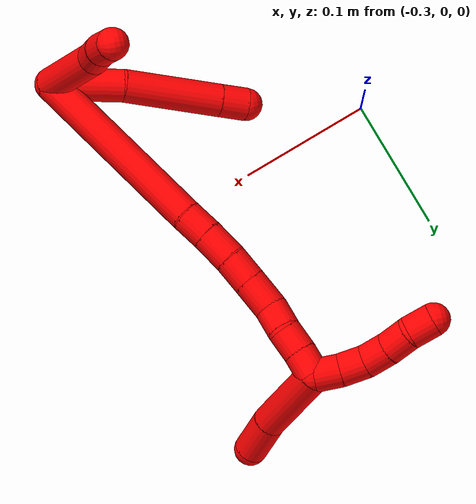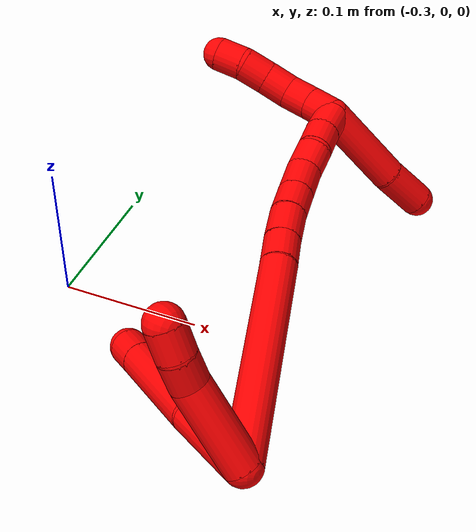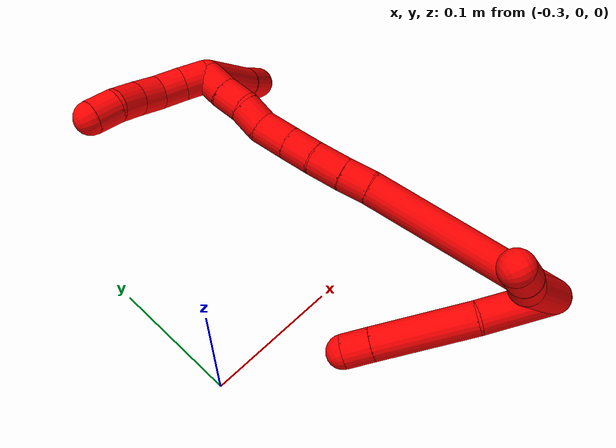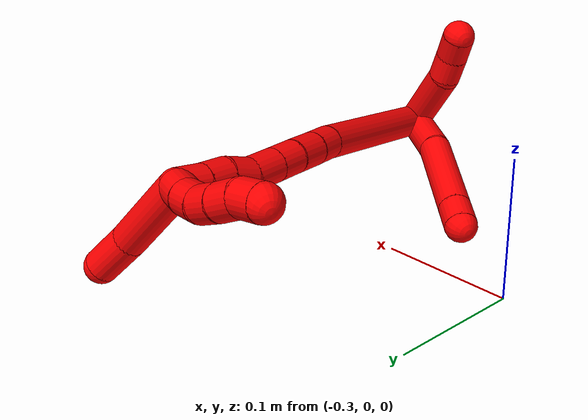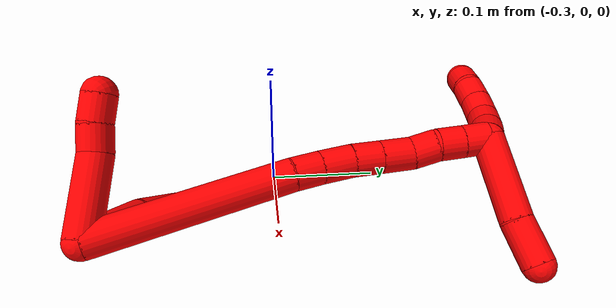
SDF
<sdf version="1.7">
 <world name="default">
  <model name="2">
   <static>0</static>
   <link name="2">
    <collision name="collision-cylinder-e_1_2_8">
     <pose>-0.002135 0.005293 0.026632 -0.196197 -0.078461 0.007726</pose>
     <geometry><cylinder><radius>0.0125</radius><length>0.054473</length></cylinder></geometry>
     <surface>
      <friction><ode><mu>1.16</mu><mu2>1.16</mu2><slip1>0</slip1><slip2>0</slip2></ode></friction>
      <contact><ode><kp>1e+06</kp><kd>1</kd><max_vel>0</max_vel><min_depth>0.001</min_depth></ode></contact>
     </surface>
    </collision>
    <visual name="visual-cylinder-e_1_2_8">
     <pose>-0.002135 0.005293 0.026632 -0.196197 -0.078461 0.007726</pose>
     <geometry><cylinder><radius>0.0125</radius><length>0.054473</length></cylinder></geometry>
     <material><ambient>1 0 0 1</ambient></material>
    </visual>
    <collision name="collision-cylinder-e_2_8_9">
     <pose>-0.013986 0.017986 0.088573 -0.206584 -0.263072 0.027427</pose>
     <geometry><cylinder><radius>0.0125</radius><length>0.074724</length></cylinder></geometry>
     <surface>
      <friction><ode><mu>1.16</mu><mu2>1.16</mu2><slip1>0</slip1><slip2>0</slip2></ode></friction>
      <contact><ode><kp>1e+06</kp><kd>1</kd><max_vel>0</max_vel><min_depth>0.001</min_depth></ode></contact>
     </surface>
    </collision>
    <visual name="visual-cylinder-e_2_8_9">
     <pose>-0.013986 0.017986 0.088573 -0.206584 -0.263072 0.027427</pose>
     <geometry><cylinder><radius>0.0125</radius><length>0.074724</length></cylinder></geometry>
     <material><ambient>1 0 0 1</ambient></material>
    </visual>
    <collision name="collision-cylinder-e_3_9_6">
     <pose>-0.026486 0.027321 0.133716 -0.194289 -0.271003 0.026571</pose>
     <geometry><cylinder><radius>0.0125</radius><length>0.020803</length></cylinder></geometry>
     <surface>
      <friction><ode><mu>1.16</mu><mu2>1.16</mu2><slip1>0</slip1><slip2>0</slip2></ode></friction>
      <contact><ode><kp>1e+06</kp><kd>1</kd><max_vel>0</max_vel><min_depth>0.001</min_depth></ode></contact>
     </surface>
    </collision>
    <visual name="visual-cylinder-e_3_9_6">
     <pose>-0.026486 0.027321 0.133716 -0.194289 -0.271003 0.026571</pose>
     <geometry><cylinder><radius>0.0125</radius><length>0.020803</length></cylinder></geometry>
     <material><ambient>1 0 0 1</ambient></material>
    </visual>
    <collision name="collision-cylinder-e_1_2_10">
     <pose>0.023693 0.011279 0.013996 -0.678317 0.921791 -0.346847</pose>
     <geometry><cylinder><radius>0.0125</radius><length>0.05948</length></cylinder></geometry>
     <surface>
      <friction><ode><mu>1.16</mu><mu2>1.16</mu2><slip1>0</slip1><slip2>0</slip2></ode></friction>
      <contact><ode><kp>1e+06</kp><kd>1</kd><max_vel>0</max_vel><min_depth>0.001</min_depth></ode></contact>
     </surface>
    </collision>
    <visual name="visual-cylinder-e_1_2_10">
     <pose>0.023693 0.011279 0.013996 -0.678317 0.921791 -0.346847</pose>
     <geometry><cylinder><radius>0.0125</radius><length>0.05948</length></cylinder></geometry>
     <material><ambient>1 0 0 1</ambient></material>
    </visual>
    <collision name="collision-cylinder-e_2_10_11">
     <pose>0.056396 0.026796 0.030052 -1.11834 1.08885 -0.724356</pose>
     <geometry><cylinder><radius>0.0125</radius><length>0.020334</length></cylinder></geometry>
     <surface>
      <friction><ode><mu>1.16</mu><mu2>1.16</mu2><slip1>0</slip1><slip2>0</slip2></ode></friction>
      <contact><ode><kp>1e+06</kp><kd>1</kd><max_vel>0</max_vel><min_depth>0.001</min_depth></ode></contact>
     </surface>
    </collision>
    <visual name="visual-cylinder-e_2_10_11">
     <pose>0.056396 0.026796 0.030052 -1.11834 1.08885 -0.724356</pose>
     <geometry><cylinder><radius>0.0125</radius><length>0.020334</length></cylinder></geometry>
     <material><ambient>1 0 0 1</ambient></material>
    </visual>
    <collision name="collision-cylinder-e_3_11_5">
     <pose>0.073539 0.036144 0.03521 -1.02565 0.937202 -0.555339</pose>
     <geometry><cylinder><radius>0.0125</radius><length>0.020186</length></cylinder></geometry>
     <surface>
      <friction><ode><mu>1.16</mu><mu2>1.16</mu2><slip1>0</slip1><slip2>0</slip2></ode></friction>
      <contact><ode><kp>1e+06</kp><kd>1</kd><max_vel>0</max_vel><min_depth>0.001</min_depth></ode></contact>
     </surface>
    </collision>
    <visual name="visual-cylinder-e_3_11_5">
     <pose>0.073539 0.036144 0.03521 -1.02565 0.937202 -0.555339</pose>
     <geometry><cylinder><radius>0.0125</radius><length>0.020186</length></cylinder></geometry>
     <material><ambient>1 0 0 1</ambient></material>
    </visual>
    <collision name="collision-cylinder-e_1_2_12">
     <pose>-0.014802 0.061255 0.037178 -1.02529 -0.203705 0.114925</pose>
     <geometry><cylinder><radius>0.0125</radius><length>0.146334</length></cylinder></geometry>
     <surface>
      <friction><ode><mu>1.16</mu><mu2>1.16</mu2><slip1>0</slip1><slip2>0</slip2></ode></friction>
      <contact><ode><kp>1e+06</kp><kd>1</kd><max_vel>0</max_vel><min_depth>0.001</min_depth></ode></contact>
     </surface>
    </collision>
    <visual name="visual-cylinder-e_1_2_12">
     <pose>-0.014802 0.061255 0.037178 -1.02529 -0.203705 0.114925</pose>
     <geometry><cylinder><radius>0.0125</radius><length>0.146334</length></cylinder></geometry>
     <material><ambient>1 0 0 1</ambient></material>
    </visual>
    <collision name="collision-cylinder-e_2_12_13">
     <pose>-0.032415 0.131002 0.080278 -0.961829 -0.265154 0.138943</pose>
     <geometry><cylinder><radius>0.0125</radius><length>0.021457</length></cylinder></geometry>
     <surface>
      <friction><ode><mu>1.16</mu><mu2>1.16</mu2><slip1>0</slip1><slip2>0</slip2></ode></friction>
      <contact><ode><kp>1e+06</kp><kd>1</kd><max_vel>0</max_vel><min_depth>0.001</min_depth></ode></contact>
     </surface>
    </collision>
    <visual name="visual-cylinder-e_2_12_13">
     <pose>-0.032415 0.131002 0.080278 -0.961829 -0.265154 0.138943</pose>
     <geometry><cylinder><radius>0.0125</radius><length>0.021457</length></cylinder></geometry>
     <material><ambient>1 0 0 1</ambient></material>
    </visual>
    <collision name="collision-cylinder-e_3_13_14">
     <pose>-0.038818 0.149493 0.092516 -1.00742 -0.294812 0.163303</pose>
     <geometry><cylinder><radius>0.0125</radius><length>0.024719</length></cylinder></geometry>
     <surface>
      <friction><ode><mu>1.16</mu><mu2>1.16</mu2><slip1>0</slip1><slip2>0</slip2></ode></friction>
      <contact><ode><kp>1e+06</kp><kd>1</kd><max_vel>0</max_vel><min_depth>0.001</min_depth></ode></contact>
     </surface>
    </collision>
    <visual name="visual-cylinder-e_3_13_14">
     <pose>-0.038818 0.149493 0.092516 -1.00742 -0.294812 0.163303</pose>
     <geometry><cylinder><radius>0.0125</radius><length>0.024719</length></cylinder></geometry>
     <material><ambient>1 0 0 1</ambient></material>
    </visual>
    <collision name="collision-cylinder-e_4_14_15">
     <pose>-0.046474 0.168313 0.103817 -1.05642 -0.381523 0.224419</pose>
     <geometry><cylinder><radius>0.0125</radius><length>0.021834</length></cylinder></geometry>
     <surface>
      <friction><ode><mu>1.16</mu><mu2>1.16</mu2><slip1>0</slip1><slip2>0</slip2></ode></friction>
      <contact><ode><kp>1e+06</kp><kd>1</kd><max_vel>0</max_vel><min_depth>0.001</min_depth></ode></contact>
     </surface>
    </collision>
    <visual name="visual-cylinder-e_4_14_15">
     <pose>-0.046474 0.168313 0.103817 -1.05642 -0.381523 0.224419</pose>
     <geometry><cylinder><radius>0.0125</radius><length>0.021834</length></cylinder></geometry>
     <material><ambient>1 0 0 1</ambient></material>
    </visual>
    <collision name="collision-cylinder-e_5_15_16">
     <pose>-0.055244 0.187471 0.114509 -1.06631 -0.379201 0.225551</pose>
     <geometry><cylinder><radius>0.0125</radius><length>0.025423</length></cylinder></geometry>
     <surface>
      <friction><ode><mu>1.16</mu><mu2>1.16</mu2><slip1>0</slip1><slip2>0</slip2></ode></friction>
      <contact><ode><kp>1e+06</kp><kd>1</kd><max_vel>0</max_vel><min_depth>0.001</min_depth></ode></contact>
     </surface>
    </collision>
    <visual name="visual-cylinder-e_5_15_16">
     <pose>-0.055244 0.187471 0.114509 -1.06631 -0.379201 0.225551</pose>
     <geometry><cylinder><radius>0.0125</radius><length>0.025423</length></cylinder></geometry>
     <material><ambient>1 0 0 1</ambient></material>
    </visual>
    <collision name="collision-cylinder-e_6_16_17">
     <pose>-0.06176 0.207432 0.122702 -1.31805 -0.180212 0.139734</pose>
     <geometry><cylinder><radius>0.0125</radius><length>0.020206</length></cylinder></geometry>
     <surface>
      <friction><ode><mu>1.16</mu><mu2>1.16</mu2><slip1>0</slip1><slip2>0</slip2></ode></friction>
      <contact><ode><kp>1e+06</kp><kd>1</kd><max_vel>0</max_vel><min_depth>0.001</min_depth></ode></contact>
     </surface>
    </collision>
    <visual name="visual-cylinder-e_6_16_17">
     <pose>-0.06176 0.207432 0.122702 -1.31805 -0.180212 0.139734</pose>
     <geometry><cylinder><radius>0.0125</radius><length>0.020206</length></cylinder></geometry>
     <material><ambient>1 0 0 1</ambient></material>
    </visual>
    <collision name="collision-cylinder-e_7_17_18">
     <pose>-0.067178 0.225567 0.129032 -1.14652 -0.368625 0.239557</pose>
     <geometry><cylinder><radius>0.0125</radius><length>0.020022</length></cylinder></geometry>
     <surface>
      <friction><ode><mu>1.16</mu><mu2>1.16</mu2><slip1>0</slip1><slip2>0</slip2></ode></friction>
      <contact><ode><kp>1e+06</kp><kd>1</kd><max_vel>0</max_vel><min_depth>0.001</min_depth></ode></contact>
     </surface>
    </collision>
    <visual name="visual-cylinder-e_7_17_18">
     <pose>-0.067178 0.225567 0.129032 -1.14652 -0.368625 0.239557</pose>
     <geometry><cylinder><radius>0.0125</radius><length>0.020022</length></cylinder></geometry>
     <material><ambient>1 0 0 1</ambient></material>
    </visual>
    <collision name="collision-cylinder-e_8_18_1">
     <pose>-0.074164 0.243033 0.135778 -1.25749 -0.344524 0.251707</pose>
     <geometry><cylinder><radius>0.0125</radius><length>0.020005</length></cylinder></geometry>
     <surface>
      <friction><ode><mu>1.16</mu><mu2>1.16</mu2><slip1>0</slip1><slip2>0</slip2></ode></friction>
      <contact><ode><kp>1e+06</kp><kd>1</kd><max_vel>0</max_vel><min_depth>0.001</min_depth></ode></contact>
     </surface>
    </collision>
    <visual name="visual-cylinder-e_8_18_1">
     <pose>-0.074164 0.243033 0.135778 -1.25749 -0.344524 0.251707</pose>
     <geometry><cylinder><radius>0.0125</radius><length>0.020005</length></cylinder></geometry>
     <material><ambient>1 0 0 1</ambient></material>
    </visual>
    <collision name="collision-cylinder-e_1_1_19">
     <pose>-0.075933 0.252998 0.148497 -0.1024 0.161633 -0.008301</pose>
     <geometry><cylinder><radius>0.0125</radius><length>0.02</length></cylinder></geometry>
     <surface>
      <friction><ode><mu>1.16</mu><mu2>1.16</mu2><slip1>0</slip1><slip2>0</slip2></ode></friction>
      <contact><ode><kp>1e+06</kp><kd>1</kd><max_vel>0</max_vel><min_depth>0.001</min_depth></ode></contact>
     </surface>
    </collision>
    <visual name="visual-cylinder-e_1_1_19">
     <pose>-0.075933 0.252998 0.148497 -0.1024 0.161633 -0.008301</pose>
     <geometry><cylinder><radius>0.0125</radius><length>0.02</length></cylinder></geometry>
     <material><ambient>1 0 0 1</ambient></material>
    </visual>
    <collision name="collision-cylinder-e_2_19_20">
     <pose>-0.071268 0.254377 0.16783 -0.038814 0.310528 -0.006076</pose>
     <geometry><cylinder><radius>0.0125</radius><length>0.02</length></cylinder></geometry>
     <surface>
      <friction><ode><mu>1.16</mu><mu2>1.16</mu2><slip1>0</slip1><slip2>0</slip2></ode></friction>
      <contact><ode><kp>1e+06</kp><kd>1</kd><max_vel>0</max_vel><min_depth>0.001</min_depth></ode></contact>
     </surface>
    </collision>
    <visual name="visual-cylinder-e_2_19_20">
     <pose>-0.071268 0.254377 0.16783 -0.038814 0.310528 -0.006076</pose>
     <geometry><cylinder><radius>0.0125</radius><length>0.02</length></cylinder></geometry>
     <material><ambient>1 0 0 1</ambient></material>
    </visual>
    <collision name="collision-cylinder-e_3_20_21">
     <pose>-0.06245 0.254947 0.185515 -0.024628 0.614103 -0.007809</pose>
     <geometry><cylinder><radius>0.0125</radius><length>0.02</length></cylinder></geometry>
     <surface>
      <friction><ode><mu>1.16</mu><mu2>1.16</mu2><slip1>0</slip1><slip2>0</slip2></ode></friction>
      <contact><ode><kp>1e+06</kp><kd>1</kd><max_vel>0</max_vel><min_depth>0.001</min_depth></ode></contact>
     </surface>
    </collision>
    <visual name="visual-cylinder-e_3_20_21">
     <pose>-0.06245 0.254947 0.185515 -0.024628 0.614103 -0.007809</pose>
     <geometry><cylinder><radius>0.0125</radius><length>0.02</length></cylinder></geometry>
     <material><ambient>1 0 0 1</ambient></material>
    </visual>
    <collision name="collision-cylinder-e_4_21_22">
     <pose>-0.050166 0.254797 0.201258 0.046464 0.710505 0.01724</pose>
     <geometry><cylinder><radius>0.0125</radius><length>0.02</length></cylinder></geometry>
     <surface>
      <friction><ode><mu>1.16</mu><mu2>1.16</mu2><slip1>0</slip1><slip2>0</slip2></ode></friction>
      <contact><ode><kp>1e+06</kp><kd>1</kd><max_vel>0</max_vel><min_depth>0.001</min_depth></ode></contact>
     </surface>
    </collision>
    <visual name="visual-cylinder-e_4_21_22">
     <pose>-0.050166 0.254797 0.201258 0.046464 0.710505 0.01724</pose>
     <geometry><cylinder><radius>0.0125</radius><length>0.02</length></cylinder></geometry>
     <material><ambient>1 0 0 1</ambient></material>
    </visual>
    <collision name="collision-cylinder-e_5_22_4">
     <pose>-0.039567 0.253476 0.21791 0.10631 0.419825 0.02267</pose>
     <geometry><cylinder><radius>0.0125</radius><length>0.02</length></cylinder></geometry>
     <surface>
      <friction><ode><mu>1.16</mu><mu2>1.16</mu2><slip1>0</slip1><slip2>0</slip2></ode></friction>
      <contact><ode><kp>1e+06</kp><kd>1</kd><max_vel>0</max_vel><min_depth>0.001</min_depth></ode></contact>
     </surface>
    </collision>
    <visual name="visual-cylinder-e_5_22_4">
     <pose>-0.039567 0.253476 0.21791 0.10631 0.419825 0.02267</pose>
     <geometry><cylinder><radius>0.0125</radius><length>0.02</length></cylinder></geometry>
     <material><ambient>1 0 0 1</ambient></material>
    </visual>
    <collision name="collision-cylinder-e_1_1_23">
     <pose>-0.106635 0.248328 0.123735 2.90135 -1.08432 -2.74606</pose>
     <geometry><cylinder><radius>0.0125</radius><length>0.065823</length></cylinder></geometry>
     <surface>
      <friction><ode><mu>1.16</mu><mu2>1.16</mu2><slip1>0</slip1><slip2>0</slip2></ode></friction>
      <contact><ode><kp>1e+06</kp><kd>1</kd><max_vel>0</max_vel><min_depth>0.001</min_depth></ode></contact>
     </surface>
    </collision>
    <visual name="visual-cylinder-e_1_1_23">
     <pose>-0.106635 0.248328 0.123735 2.90135 -1.08432 -2.74606</pose>
     <geometry><cylinder><radius>0.0125</radius><length>0.065823</length></cylinder></geometry>
     <material><ambient>1 0 0 1</ambient></material>
    </visual>
    <collision name="collision-cylinder-e_2_23_3">
     <pose>-0.151381 0.244761 0.101933 -3.12789 -1.15789 3.12063</pose>
     <geometry><cylinder><radius>0.0125</radius><length>0.034177</length></cylinder></geometry>
     <surface>
      <friction><ode><mu>1.16</mu><mu2>1.16</mu2><slip1>0</slip1><slip2>0</slip2></ode></friction>
      <contact><ode><kp>1e+06</kp><kd>1</kd><max_vel>0</max_vel><min_depth>0.001</min_depth></ode></contact>
     </surface>
    </collision>
    <visual name="visual-cylinder-e_2_23_3">
     <pose>-0.151381 0.244761 0.101933 -3.12789 -1.15789 3.12063</pose>
     <geometry><cylinder><radius>0.0125</radius><length>0.034177</length></cylinder></geometry>
     <material><ambient>1 0 0 1</ambient></material>
    </visual>
    <collision name="collision-sphere-3">
     <pose>-0.167033 0.244855 0.095077 0 -0 0</pose>
     <geometry><sphere><radius>0.0125</radius></sphere></geometry>
     <surface>
      <friction><ode><mu>1.16</mu><mu2>1.16</mu2><slip1>0</slip1><slip2>0</slip2></ode></friction>
      <contact><ode><kp>1e+06</kp><kd>1</kd><max_vel>0</max_vel><min_depth>0.001</min_depth></ode></contact>
     </surface>
    </collision>
    <visual name="visual-sphere-3">
     <pose>-0.167033 0.244855 0.095077 0 -0 0</pose>
     <geometry><sphere><radius>0.0125</radius></sphere></geometry>
     <material><ambient>1 0 0 1</ambient></material>
    </visual>
    <collision name="collision-sphere-23">
     <pose>-0.135728 0.244667 0.10879 0 -0 0</pose>
     <geometry><sphere><radius>0.0125</radius></sphere></geometry>
     <surface>
      <friction><ode><mu>1.16</mu><mu2>1.16</mu2><slip1>0</slip1><slip2>0</slip2></ode></friction>
      <contact><ode><kp>1e+06</kp><kd>1</kd><max_vel>0</max_vel><min_depth>0.001</min_depth></ode></contact>
     </surface>
    </collision>
    <visual name="visual-sphere-23">
     <pose>-0.135728 0.244667 0.10879 0 -0 0</pose>
     <geometry><sphere><radius>0.0125</radius></sphere></geometry>
     <material><ambient>1 0 0 1</ambient></material>
    </visual>
    <collision name="collision-sphere-4">
     <pose>-0.035491 0.252507 0.22699 0 -0 0</pose>
     <geometry><sphere><radius>0.0125</radius></sphere></geometry>
     <surface>
      <friction><ode><mu>1.16</mu><mu2>1.16</mu2><slip1>0</slip1><slip2>0</slip2></ode></friction>
      <contact><ode><kp>1e+06</kp><kd>1</kd><max_vel>0</max_vel><min_depth>0.001</min_depth></ode></contact>
     </surface>
    </collision>
    <visual name="visual-sphere-4">
     <pose>-0.035491 0.252507 0.22699 0 -0 0</pose>
     <geometry><sphere><radius>0.0125</radius></sphere></geometry>
     <material><ambient>1 0 0 1</ambient></material>
    </visual>
    <collision name="collision-sphere-22">
     <pose>-0.043643 0.254445 0.20883 0 -0 0</pose>
     <geometry><sphere><radius>0.0125</radius></sphere></geometry>
     <surface>
      <friction><ode><mu>1.16</mu><mu2>1.16</mu2><slip1>0</slip1><slip2>0</slip2></ode></friction>
      <contact><ode><kp>1e+06</kp><kd>1</kd><max_vel>0</max_vel><min_depth>0.001</min_depth></ode></contact>
     </surface>
    </collision>
    <visual name="visual-sphere-22">
     <pose>-0.043643 0.254445 0.20883 0 -0 0</pose>
     <geometry><sphere><radius>0.0125</radius></sphere></geometry>
     <material><ambient>1 0 0 1</ambient></material>
    </visual>
    <collision name="collision-sphere-21">
     <pose>-0.056688 0.255149 0.193685 0 -0 0</pose>
     <geometry><sphere><radius>0.0125</radius></sphere></geometry>
     <surface>
      <friction><ode><mu>1.16</mu><mu2>1.16</mu2><slip1>0</slip1><slip2>0</slip2></ode></friction>
      <contact><ode><kp>1e+06</kp><kd>1</kd><max_vel>0</max_vel><min_depth>0.001</min_depth></ode></contact>
     </surface>
    </collision>
    <visual name="visual-sphere-21">
     <pose>-0.056688 0.255149 0.193685 0 -0 0</pose>
     <geometry><sphere><radius>0.0125</radius></sphere></geometry>
     <material><ambient>1 0 0 1</ambient></material>
    </visual>
    <collision name="collision-sphere-20">
     <pose>-0.068212 0.254746 0.177345 0 -0 0</pose>
     <geometry><sphere><radius>0.0125</radius></sphere></geometry>
     <surface>
      <friction><ode><mu>1.16</mu><mu2>1.16</mu2><slip1>0</slip1><slip2>0</slip2></ode></friction>
      <contact><ode><kp>1e+06</kp><kd>1</kd><max_vel>0</max_vel><min_depth>0.001</min_depth></ode></contact>
     </surface>
    </collision>
    <visual name="visual-sphere-20">
     <pose>-0.068212 0.254746 0.177345 0 -0 0</pose>
     <geometry><sphere><radius>0.0125</radius></sphere></geometry>
     <material><ambient>1 0 0 1</ambient></material>
    </visual>
    <collision name="collision-sphere-11">
     <pose>0.065405 0.031034 0.032112 0 -0 0</pose>
     <geometry><sphere><radius>0.0125</radius></sphere></geometry>
     <surface>
      <friction><ode><mu>1.16</mu><mu2>1.16</mu2><slip1>0</slip1><slip2>0</slip2></ode></friction>
      <contact><ode><kp>1e+06</kp><kd>1</kd><max_vel>0</max_vel><min_depth>0.001</min_depth></ode></contact>
     </surface>
    </collision>
    <visual name="visual-sphere-11">
     <pose>0.065405 0.031034 0.032112 0 -0 0</pose>
     <geometry><sphere><radius>0.0125</radius></sphere></geometry>
     <material><ambient>1 0 0 1</ambient></material>
    </visual>
    <collision name="collision-sphere-10">
     <pose>0.047387 0.022558 0.027991 0 -0 0</pose>
     <geometry><sphere><radius>0.0125</radius></sphere></geometry>
     <surface>
      <friction><ode><mu>1.16</mu><mu2>1.16</mu2><slip1>0</slip1><slip2>0</slip2></ode></friction>
      <contact><ode><kp>1e+06</kp><kd>1</kd><max_vel>0</max_vel><min_depth>0.001</min_depth></ode></contact>
     </surface>
    </collision>
    <visual name="visual-sphere-10">
     <pose>0.047387 0.022558 0.027991 0 -0 0</pose>
     <geometry><sphere><radius>0.0125</radius></sphere></geometry>
     <material><ambient>1 0 0 1</ambient></material>
    </visual>
    <collision name="collision-sphere-6">
     <pose>-0.02927 0.029256 0.143549 0 -0 0</pose>
     <geometry><sphere><radius>0.0125</radius></sphere></geometry>
     <surface>
      <friction><ode><mu>1.16</mu><mu2>1.16</mu2><slip1>0</slip1><slip2>0</slip2></ode></friction>
      <contact><ode><kp>1e+06</kp><kd>1</kd><max_vel>0</max_vel><min_depth>0.001</min_depth></ode></contact>
     </surface>
    </collision>
    <visual name="visual-sphere-6">
     <pose>-0.02927 0.029256 0.143549 0 -0 0</pose>
     <geometry><sphere><radius>0.0125</radius></sphere></geometry>
     <material><ambient>1 0 0 1</ambient></material>
    </visual>
    <collision name="collision-sphere-9">
     <pose>-0.023702 0.025386 0.123883 0 -0 0</pose>
     <geometry><sphere><radius>0.0125</radius></sphere></geometry>
     <surface>
      <friction><ode><mu>1.16</mu><mu2>1.16</mu2><slip1>0</slip1><slip2>0</slip2></ode></friction>
      <contact><ode><kp>1e+06</kp><kd>1</kd><max_vel>0</max_vel><min_depth>0.001</min_depth></ode></contact>
     </surface>
    </collision>
    <visual name="visual-sphere-9">
     <pose>-0.023702 0.025386 0.123883 0 -0 0</pose>
     <geometry><sphere><radius>0.0125</radius></sphere></geometry>
     <material><ambient>1 0 0 1</ambient></material>
    </visual>
    <collision name="collision-sphere-2">
     <geometry><sphere><radius>0.0125</radius></sphere></geometry>
     <surface>
      <friction><ode><mu>1.16</mu><mu2>1.16</mu2><slip1>0</slip1><slip2>0</slip2></ode></friction>
      <contact><ode><kp>1e+06</kp><kd>1</kd><max_vel>0</max_vel><min_depth>0.001</min_depth></ode></contact>
     </surface>
    </collision>
    <visual name="visual-sphere-2">
     <geometry><sphere><radius>0.0125</radius></sphere></geometry>
     <material><ambient>1 0 0 1</ambient></material>
    </visual>
    <collision name="collision-sphere-19">
     <pose>-0.074323 0.254007 0.158315 0 -0 0</pose>
     <geometry><sphere><radius>0.0125</radius></sphere></geometry>
     <surface>
      <friction><ode><mu>1.16</mu><mu2>1.16</mu2><slip1>0</slip1><slip2>0</slip2></ode></friction>
      <contact><ode><kp>1e+06</kp><kd>1</kd><max_vel>0</max_vel><min_depth>0.001</min_depth></ode></contact>
     </surface>
    </collision>
    <visual name="visual-sphere-19">
     <pose>-0.074323 0.254007 0.158315 0 -0 0</pose>
     <geometry><sphere><radius>0.0125</radius></sphere></geometry>
     <material><ambient>1 0 0 1</ambient></material>
    </visual>
    <collision name="collision-sphere-8">
     <pose>-0.00427 0.010586 0.053263 0 -0 0</pose>
     <geometry><sphere><radius>0.0125</radius></sphere></geometry>
     <surface>
      <friction><ode><mu>1.16</mu><mu2>1.16</mu2><slip1>0</slip1><slip2>0</slip2></ode></friction>
      <contact><ode><kp>1e+06</kp><kd>1</kd><max_vel>0</max_vel><min_depth>0.001</min_depth></ode></contact>
     </surface>
    </collision>
    <visual name="visual-sphere-8">
     <pose>-0.00427 0.010586 0.053263 0 -0 0</pose>
     <geometry><sphere><radius>0.0125</radius></sphere></geometry>
     <material><ambient>1 0 0 1</ambient></material>
    </visual>
    <collision name="collision-sphere-5">
     <pose>0.081673 0.041253 0.038309 0 -0 0</pose>
     <geometry><sphere><radius>0.0125</radius></sphere></geometry>
     <surface>
      <friction><ode><mu>1.16</mu><mu2>1.16</mu2><slip1>0</slip1><slip2>0</slip2></ode></friction>
      <contact><ode><kp>1e+06</kp><kd>1</kd><max_vel>0</max_vel><min_depth>0.001</min_depth></ode></contact>
     </surface>
    </collision>
    <visual name="visual-sphere-5">
     <pose>0.081673 0.041253 0.038309 0 -0 0</pose>
     <geometry><sphere><radius>0.0125</radius></sphere></geometry>
     <material><ambient>1 0 0 1</ambient></material>
    </visual>
    <collision name="collision-sphere-12">
     <pose>-0.029603 0.12251 0.074356 0 -0 0</pose>
     <geometry><sphere><radius>0.0125</radius></sphere></geometry>
     <surface>
      <friction><ode><mu>1.16</mu><mu2>1.16</mu2><slip1>0</slip1><slip2>0</slip2></ode></friction>
      <contact><ode><kp>1e+06</kp><kd>1</kd><max_vel>0</max_vel><min_depth>0.001</min_depth></ode></contact>
     </surface>
    </collision>
    <visual name="visual-sphere-12">
     <pose>-0.029603 0.12251 0.074356 0 -0 0</pose>
     <geometry><sphere><radius>0.0125</radius></sphere></geometry>
     <material><ambient>1 0 0 1</ambient></material>
    </visual>
    <collision name="collision-sphere-13">
     <pose>-0.035226 0.139494 0.0862 0 -0 0</pose>
     <geometry><sphere><radius>0.0125</radius></sphere></geometry>
     <surface>
      <friction><ode><mu>1.16</mu><mu2>1.16</mu2><slip1>0</slip1><slip2>0</slip2></ode></friction>
      <contact><ode><kp>1e+06</kp><kd>1</kd><max_vel>0</max_vel><min_depth>0.001</min_depth></ode></contact>
     </surface>
    </collision>
    <visual name="visual-sphere-13">
     <pose>-0.035226 0.139494 0.0862 0 -0 0</pose>
     <geometry><sphere><radius>0.0125</radius></sphere></geometry>
     <material><ambient>1 0 0 1</ambient></material>
    </visual>
    <collision name="collision-sphere-14">
     <pose>-0.042409 0.159492 0.098832 0 -0 0</pose>
     <geometry><sphere><radius>0.0125</radius></sphere></geometry>
     <surface>
      <friction><ode><mu>1.16</mu><mu2>1.16</mu2><slip1>0</slip1><slip2>0</slip2></ode></friction>
      <contact><ode><kp>1e+06</kp><kd>1</kd><max_vel>0</max_vel><min_depth>0.001</min_depth></ode></contact>
     </surface>
    </collision>
    <visual name="visual-sphere-14">
     <pose>-0.042409 0.159492 0.098832 0 -0 0</pose>
     <geometry><sphere><radius>0.0125</radius></sphere></geometry>
     <material><ambient>1 0 0 1</ambient></material>
    </visual>
    <collision name="collision-sphere-15">
     <pose>-0.050538 0.177134 0.108802 0 -0 0</pose>
     <geometry><sphere><radius>0.0125</radius></sphere></geometry>
     <surface>
      <friction><ode><mu>1.16</mu><mu2>1.16</mu2><slip1>0</slip1><slip2>0</slip2></ode></friction>
      <contact><ode><kp>1e+06</kp><kd>1</kd><max_vel>0</max_vel><min_depth>0.001</min_depth></ode></contact>
     </surface>
    </collision>
    <visual name="visual-sphere-15">
     <pose>-0.050538 0.177134 0.108802 0 -0 0</pose>
     <geometry><sphere><radius>0.0125</radius></sphere></geometry>
     <material><ambient>1 0 0 1</ambient></material>
    </visual>
    <collision name="collision-sphere-16">
     <pose>-0.059949 0.197809 0.120217 0 -0 0</pose>
     <geometry><sphere><radius>0.0125</radius></sphere></geometry>
     <surface>
      <friction><ode><mu>1.16</mu><mu2>1.16</mu2><slip1>0</slip1><slip2>0</slip2></ode></friction>
      <contact><ode><kp>1e+06</kp><kd>1</kd><max_vel>0</max_vel><min_depth>0.001</min_depth></ode></contact>
     </surface>
    </collision>
    <visual name="visual-sphere-16">
     <pose>-0.059949 0.197809 0.120217 0 -0 0</pose>
     <geometry><sphere><radius>0.0125</radius></sphere></geometry>
     <material><ambient>1 0 0 1</ambient></material>
    </visual>
    <collision name="collision-sphere-17">
     <pose>-0.063571 0.217056 0.125188 0 -0 0</pose>
     <geometry><sphere><radius>0.0125</radius></sphere></geometry>
     <surface>
      <friction><ode><mu>1.16</mu><mu2>1.16</mu2><slip1>0</slip1><slip2>0</slip2></ode></friction>
      <contact><ode><kp>1e+06</kp><kd>1</kd><max_vel>0</max_vel><min_depth>0.001</min_depth></ode></contact>
     </surface>
    </collision>
    <visual name="visual-sphere-17">
     <pose>-0.063571 0.217056 0.125188 0 -0 0</pose>
     <geometry><sphere><radius>0.0125</radius></sphere></geometry>
     <material><ambient>1 0 0 1</ambient></material>
    </visual>
    <collision name="collision-sphere-18">
     <pose>-0.070786 0.234077 0.132876 0 -0 0</pose>
     <geometry><sphere><radius>0.0125</radius></sphere></geometry>
     <surface>
      <friction><ode><mu>1.16</mu><mu2>1.16</mu2><slip1>0</slip1><slip2>0</slip2></ode></friction>
      <contact><ode><kp>1e+06</kp><kd>1</kd><max_vel>0</max_vel><min_depth>0.001</min_depth></ode></contact>
     </surface>
    </collision>
    <visual name="visual-sphere-18">
     <pose>-0.070786 0.234077 0.132876 0 -0 0</pose>
     <geometry><sphere><radius>0.0125</radius></sphere></geometry>
     <material><ambient>1 0 0 1</ambient></material>
    </visual>
    <collision name="collision-sphere-1">
     <pose>-0.077542 0.251989 0.13868 0 -0 0</pose>
     <geometry><sphere><radius>0.0125</radius></sphere></geometry>
     <surface>
      <friction><ode><mu>1.16</mu><mu2>1.16</mu2><slip1>0</slip1><slip2>0</slip2></ode></friction>
      <contact><ode><kp>1e+06</kp><kd>1</kd><max_vel>0</max_vel><min_depth>0.001</min_depth></ode></contact>
     </surface>
    </collision>
    <visual name="visual-sphere-1">
     <pose>-0.077542 0.251989 0.13868 0 -0 0</pose>
     <geometry><sphere><radius>0.0125</radius></sphere></geometry>
     <material><ambient>1 0 0 1</ambient></material>
    </visual>
    <inertial>
     <pose>-0.034892 0.122332 0.087281 0 -0 0</pose>
     <mass>0.75</mass>
     <inertia>
      <ixx>0.000348</ixx>
      <ixy>0</ixy>
      <ixz>0</ixz>
      <iyy>0.000309</iyy>
      <iyz>0</iyz>
      <izz>-0.000147</izz>
     </inertia>
    </inertial>
   </link>
   <pose>-0.106383 -0.130423 0.043429 1.84973 -1.01663 -2.14444</pose>
  </model>
 </world>
</sdf>
